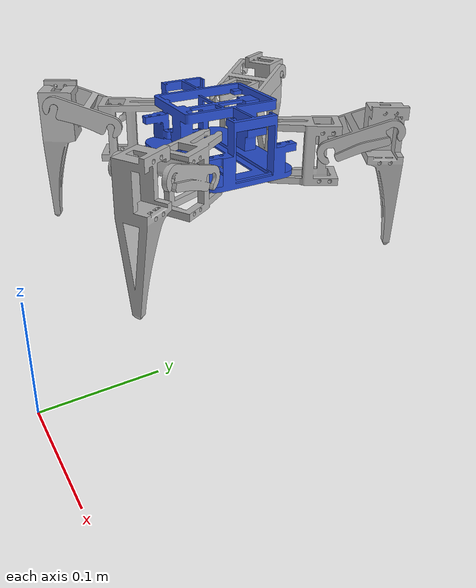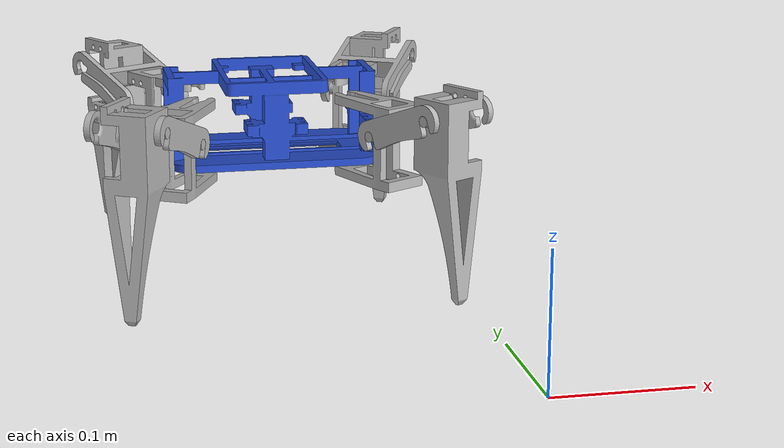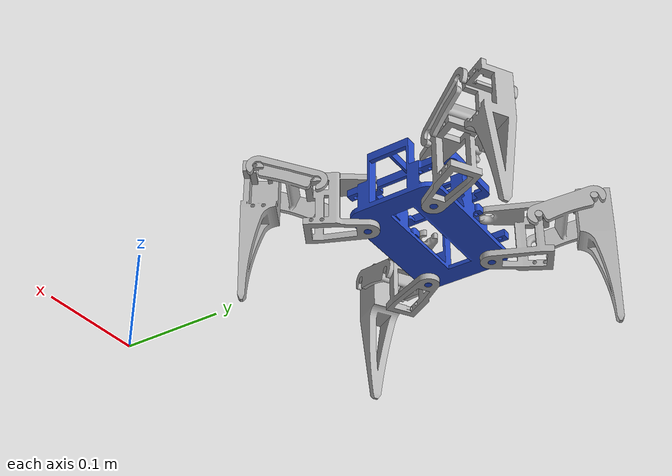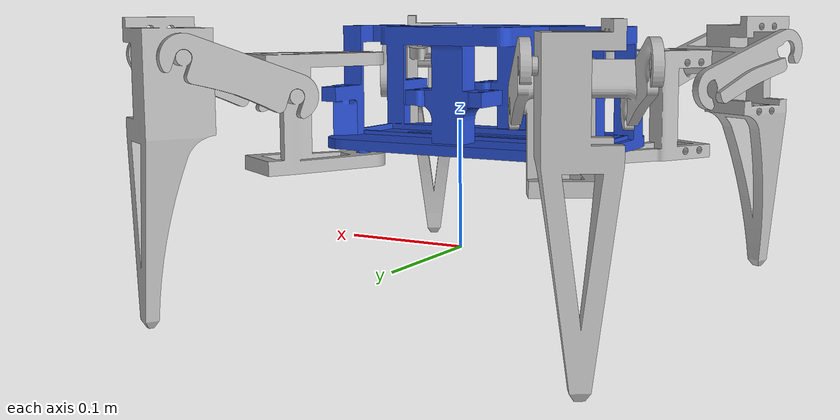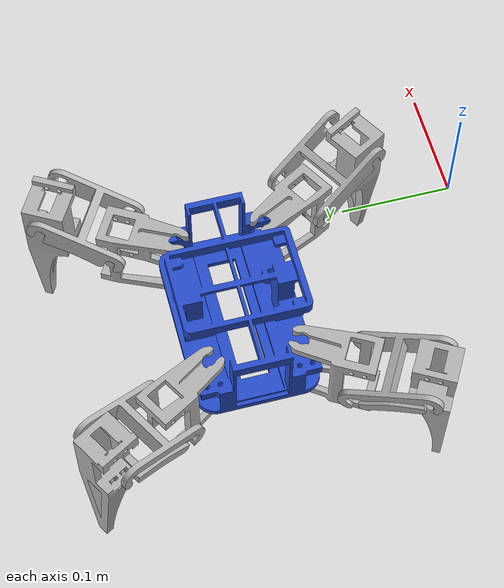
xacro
<?xml version="1.0" ?>
<robot name="FNL" xmlns:xacro="http://www.ros.org/wiki/xacro">

<xacro:include filename="$(find FNL_description)/urdf/materials.xacro" />
<xacro:include filename="$(find FNL_description)/urdf/FNL.trans" />
<xacro:include filename="$(find FNL_description)/urdf/FNL.gazebo" />
<link name="base_link">
  <inertial>
    <origin xyz="-0.1457705043934358 0.23407871850318224 0.1327563273134616" rpy="0 0 0"/>
    <mass value="1.04154618042607"/>
    <inertia ixx="0.001545" iyy="0.002498" izz="0.003072" ixy="0.0" iyz="5e-06" ixz="-0.0"/>
  </inertial>
  <visual>
    <origin xyz="0 0 0" rpy="0 0 0"/>
    <geometry>
      <mesh filename="file://$(find FNL_description)/meshes/base_link.stl" scale="0.001 0.001 0.001"/>
    </geometry>
    <material name="biru"/>
  </visual>
  <collision>
    <origin xyz="0 0 0" rpy="0 0 0"/>
    <geometry>
      <mesh filename="file://$(find FNL_description)/meshes/base_link.stl" scale="0.001 0.001 0.001"/>
    </geometry>
  </collision>
</link>

<link name="BetKananDep__2__Mirror___2__Mirror__1">
  <inertial>
    <origin xyz="0.019662332810923874 -0.007068182880435092 -0.03574463042369655" rpy="0 0 0"/>
    <mass value="0.32297068673829615"/>
    <inertia ixx="0.000414" iyy="0.000416" izz="6.2e-05" ixy="-5e-06" iyz="3.2e-05" ixz="4.2e-05"/>
  </inertial>
  <visual>
    <origin xyz="0.061011 -0.36949 -0.162069" rpy="0 0 0"/>
    <geometry>
      <mesh filename="file://$(find FNL_description)/meshes/BetKananDep__2__Mirror___2__Mirror__1.stl" scale="0.001 0.001 0.001"/>
    </geometry>
    <material name="silver"/>
  </visual>
  <collision>
    <origin xyz="0.061011 -0.36949 -0.162069" rpy="0 0 0"/>
    <geometry>
      <mesh filename="file://$(find FNL_description)/meshes/BetKananDep__2__Mirror___2__Mirror__1.stl" scale="0.001 0.001 0.001"/>
    </geometry>
  </collision>
</link>

<link name="DengKananDep__1___2__Mirror___3__Mirror__1">
  <inertial>
    <origin xyz="0.03578955401550969 0.00998806492381421 0.011762536830899034" rpy="0 0 0"/>
    <mass value="0.12464330596100792"/>
    <inertia ixx="5.2e-05" iyy="6.5e-05" izz="0.000101" ixy="1.1e-05" iyz="-1.1e-05" ixz="-6e-06"/>
  </inertial>
  <visual>
    <origin xyz="0.088496 -0.321883 -0.14206" rpy="0 0 0"/>
    <geometry>
      <mesh filename="file://$(find FNL_description)/meshes/DengKananDep__1___2__Mirror___3__Mirror__1.stl" scale="0.001 0.001 0.001"/>
    </geometry>
    <material name="silver"/>
  </visual>
  <collision>
    <origin xyz="0.088496 -0.321883 -0.14206" rpy="0 0 0"/>
    <geometry>
      <mesh filename="file://$(find FNL_description)/meshes/DengKananDep__1___2__Mirror___3__Mirror__1.stl" scale="0.001 0.001 0.001"/>
    </geometry>
  </collision>
</link>

<link name="BetKananDep__2__Mirror___2__1">
  <inertial>
    <origin xyz="-0.019661740601800537 -0.007068182880435425 -0.03574463042369655" rpy="0 0 0"/>
    <mass value="0.32297068673829604"/>
    <inertia ixx="0.000414" iyy="0.000416" izz="6.2e-05" ixy="5e-06" iyz="3.2e-05" ixz="-4.2e-05"/>
  </inertial>
  <visual>
    <origin xyz="0.230512 -0.36949 -0.162069" rpy="0 0 0"/>
    <geometry>
      <mesh filename="file://$(find FNL_description)/meshes/BetKananDep__2__Mirror___2__1.stl" scale="0.001 0.001 0.001"/>
    </geometry>
    <material name="silver"/>
  </visual>
  <collision>
    <origin xyz="0.230512 -0.36949 -0.162069" rpy="0 0 0"/>
    <geometry>
      <mesh filename="file://$(find FNL_description)/meshes/BetKananDep__2__Mirror___2__1.stl" scale="0.001 0.001 0.001"/>
    </geometry>
  </collision>
</link>

<link name="DengKananDep__1___2__Mirror___3__1">
  <inertial>
    <origin xyz="-0.0357901578439572 0.009988002317730449 0.011762576621350829" rpy="0 0 0"/>
    <mass value="0.12464356794067415"/>
    <inertia ixx="5.2e-05" iyy="6.5e-05" izz="0.000101" ixy="-1.1e-05" iyz="-1.1e-05" ixz="6e-06"/>
  </inertial>
  <visual>
    <origin xyz="0.203026 -0.321883 -0.14206" rpy="0 0 0"/>
    <geometry>
      <mesh filename="file://$(find FNL_description)/meshes/DengKananDep__1___2__Mirror___3__1.stl" scale="0.001 0.001 0.001"/>
    </geometry>
    <material name="silver"/>
  </visual>
  <collision>
    <origin xyz="0.203026 -0.321883 -0.14206" rpy="0 0 0"/>
    <geometry>
      <mesh filename="file://$(find FNL_description)/meshes/DengKananDep__1___2__Mirror___3__1.stl" scale="0.001 0.001 0.001"/>
    </geometry>
  </collision>
</link>

<link name="BetKananDep__2__1">
  <inertial>
    <origin xyz="-0.01966141439180069 0.007068122720855746 -0.03574463042369666" rpy="0 0 0"/>
    <mass value="0.32297068673829615"/>
    <inertia ixx="0.000414" iyy="0.000416" izz="6.2e-05" ixy="-5e-06" iyz="-3.2e-05" ixz="-4.2e-05"/>
  </inertial>
  <visual>
    <origin xyz="0.230533 -0.099063 -0.162069" rpy="0 0 0"/>
    <geometry>
      <mesh filename="file://$(find FNL_description)/meshes/BetKananDep__2__1.stl" scale="0.001 0.001 0.001"/>
    </geometry>
    <material name="silver"/>
  </visual>
  <collision>
    <origin xyz="0.230533 -0.099063 -0.162069" rpy="0 0 0"/>
    <geometry>
      <mesh filename="file://$(find FNL_description)/meshes/BetKananDep__2__1.stl" scale="0.001 0.001 0.001"/>
    </geometry>
  </collision>
</link>

<link name="DengKananDep__1___2__1">
  <inertial>
    <origin xyz="-0.0357896355963864 -0.009988125083393917 0.01176253683089895" rpy="0 0 0"/>
    <mass value="0.12464330596100792"/>
    <inertia ixx="5.2e-05" iyy="6.5e-05" izz="0.000101" ixy="1.1e-05" iyz="1.1e-05" ixz="6e-06"/>
  </inertial>
  <visual>
    <origin xyz="0.203047 -0.14667 -0.14206" rpy="0 0 0"/>
    <geometry>
      <mesh filename="file://$(find FNL_description)/meshes/DengKananDep__1___2__1.stl" scale="0.001 0.001 0.001"/>
    </geometry>
    <material name="silver"/>
  </visual>
  <collision>
    <origin xyz="0.203047 -0.14667 -0.14206" rpy="0 0 0"/>
    <geometry>
      <mesh filename="file://$(find FNL_description)/meshes/DengKananDep__1___2__1.stl" scale="0.001 0.001 0.001"/>
    </geometry>
  </collision>
</link>

<link name="BetKananDep__2__Mirror___3__1">
  <inertial>
    <origin xyz="0.019662332810923944 0.007068122720855802 -0.03574463042369655" rpy="0 0 0"/>
    <mass value="0.32297068673829604"/>
    <inertia ixx="0.000414" iyy="0.000416" izz="6.2e-05" ixy="5e-06" iyz="-3.2e-05" ixz="4.2e-05"/>
  </inertial>
  <visual>
    <origin xyz="0.061011 -0.099063 -0.162069" rpy="0 0 0"/>
    <geometry>
      <mesh filename="file://$(find FNL_description)/meshes/BetKananDep__2__Mirror___3__1.stl" scale="0.001 0.001 0.001"/>
    </geometry>
    <material name="silver"/>
  </visual>
  <collision>
    <origin xyz="0.061011 -0.099063 -0.162069" rpy="0 0 0"/>
    <geometry>
      <mesh filename="file://$(find FNL_description)/meshes/BetKananDep__2__Mirror___3__1.stl" scale="0.001 0.001 0.001"/>
    </geometry>
  </collision>
</link>

<link name="DengKananDep__1___2__Mirror___4__1">
  <inertial>
    <origin xyz="0.03578975005308061 -0.009988062477309934 0.011762576621350856" rpy="0 0 0"/>
    <mass value="0.12464356794067415"/>
    <inertia ixx="5.2e-05" iyy="6.5e-05" izz="0.000101" ixy="-1.1e-05" iyz="1.1e-05" ixz="-6e-06"/>
  </inertial>
  <visual>
    <origin xyz="0.088496 -0.14667 -0.14206" rpy="0 0 0"/>
    <geometry>
      <mesh filename="file://$(find FNL_description)/meshes/DengKananDep__1___2__Mirror___4__1.stl" scale="0.001 0.001 0.001"/>
    </geometry>
    <material name="silver"/>
  </visual>
  <collision>
    <origin xyz="0.088496 -0.14667 -0.14206" rpy="0 0 0"/>
    <geometry>
      <mesh filename="file://$(find FNL_description)/meshes/DengKananDep__1___2__Mirror___4__1.stl" scale="0.001 0.001 0.001"/>
    </geometry>
  </collision>
</link>

<link name="PahaKananDep__2___1___2__Mirror___3__1">
  <inertial>
    <origin xyz="0.015711880882158746 -0.025947437205217416 0.03183619171533866" rpy="0 0 0"/>
    <mass value="0.17119708420148605"/>
    <inertia ixx="0.000147" iyy="0.00012" izz="8.1e-05" ixy="1.6e-05" iyz="5e-06" ixz="-3e-06"/>
  </inertial>
  <visual>
    <origin xyz="0.091514 -0.19867 -0.10316" rpy="0 0 0"/>
    <geometry>
      <mesh filename="file://$(find FNL_description)/meshes/PahaKananDep__2___1___2__Mirror___3__1.stl" scale="0.001 0.001 0.001"/>
    </geometry>
    <material name="silver"/>
  </visual>
  <collision>
    <origin xyz="0.091514 -0.19867 -0.10316" rpy="0 0 0"/>
    <geometry>
      <mesh filename="file://$(find FNL_description)/meshes/PahaKananDep__2___1___2__Mirror___3__1.stl" scale="0.001 0.001 0.001"/>
    </geometry>
  </collision>
</link>

<link name="PahaKananDep__2___1___2__1">
  <inertial>
    <origin xyz="-0.015711948638386874 -0.025947440718973674 0.03183619079245026" rpy="0 0 0"/>
    <mass value="0.1711970761285021"/>
    <inertia ixx="0.000147" iyy="0.00012" izz="8.1e-05" ixy="-1.6e-05" iyz="5e-06" ixz="3e-06"/>
  </inertial>
  <visual>
    <origin xyz="0.200029 -0.19867 -0.10316" rpy="0 0 0"/>
    <geometry>
      <mesh filename="file://$(find FNL_description)/meshes/PahaKananDep__2___1___2__1.stl" scale="0.001 0.001 0.001"/>
    </geometry>
    <material name="silver"/>
  </visual>
  <collision>
    <origin xyz="0.200029 -0.19867 -0.10316" rpy="0 0 0"/>
    <geometry>
      <mesh filename="file://$(find FNL_description)/meshes/PahaKananDep__2___1___2__1.stl" scale="0.001 0.001 0.001"/>
    </geometry>
  </collision>
</link>

<link name="PahaKananDep__2___1___2__Mirror___2__Mirror__1">
  <inertial>
    <origin xyz="0.015711867057510154 0.025948380559393913 0.031836190792450314" rpy="0 0 0"/>
    <mass value="0.1711970761285021"/>
    <inertia ixx="0.000147" iyy="0.00012" izz="8.1e-05" ixy="-1.6e-05" iyz="-5e-06" ixz="-3e-06"/>
  </inertial>
  <visual>
    <origin xyz="0.091514 -0.269882 -0.10316" rpy="0 0 0"/>
    <geometry>
      <mesh filename="file://$(find FNL_description)/meshes/PahaKananDep__2___1___2__Mirror___2__Mirror__1.stl" scale="0.001 0.001 0.001"/>
    </geometry>
    <material name="silver"/>
  </visual>
  <collision>
    <origin xyz="0.091514 -0.269882 -0.10316" rpy="0 0 0"/>
    <geometry>
      <mesh filename="file://$(find FNL_description)/meshes/PahaKananDep__2___1___2__Mirror___2__Mirror__1.stl" scale="0.001 0.001 0.001"/>
    </geometry>
  </collision>
</link>

<link name="PahaKananDep__2___1___2__Mirror___2__1">
  <inertial>
    <origin xyz="-0.015712288673035424 0.025948377045637794 0.03183619171533866" rpy="0 0 0"/>
    <mass value="0.17119708420148605"/>
    <inertia ixx="0.000147" iyy="0.00012" izz="8.1e-05" ixy="1.6e-05" iyz="-5e-06" ixz="3e-06"/>
  </inertial>
  <visual>
    <origin xyz="0.200008 -0.269882 -0.10316" rpy="0 0 0"/>
    <geometry>
      <mesh filename="file://$(find FNL_description)/meshes/PahaKananDep__2___1___2__Mirror___2__1.stl" scale="0.001 0.001 0.001"/>
    </geometry>
    <material name="silver"/>
  </visual>
  <collision>
    <origin xyz="0.200008 -0.269882 -0.10316" rpy="0 0 0"/>
    <geometry>
      <mesh filename="file://$(find FNL_description)/meshes/PahaKananDep__2___1___2__Mirror___2__1.stl" scale="0.001 0.001 0.001"/>
    </geometry>
  </collision>
</link>

<joint name="Revolute 1" type="revolute">
  <origin xyz="0.027485 0.047607 0.020009" rpy="0 0 0"/>
  <parent link="DengKananDep__1___2__Mirror___3__Mirror__1"/>
  <child link="BetKananDep__2__Mirror___2__Mirror__1"/>
  <axis xyz="0.866025 -0.5 -0.0"/>
  <limit upper="3.926991" lower="-0.436332" effort="100" velocity="100"/>
</joint>

<joint name="Revolute 2" type="revolute">
  <origin xyz="0.003018 0.052001 0.0389" rpy="0 0 0"/>
  <parent link="PahaKananDep__2___1___2__Mirror___2__Mirror__1"/>
  <child link="DengKananDep__1___2__Mirror___3__Mirror__1"/>
  <axis xyz="0.866025 -0.5 -0.0"/>
  <limit upper="1.48353" lower="-1.396263" effort="100" velocity="100"/>
</joint>

<joint name="Revolute 3" type="revolute">
  <origin xyz="-0.027486 0.047607 0.020009" rpy="0 0 0"/>
  <parent link="DengKananDep__1___2__Mirror___3__1"/>
  <child link="BetKananDep__2__Mirror___2__1"/>
  <axis xyz="0.866025 0.5 0.0"/>
  <limit upper="3.926991" lower="-0.436332" effort="100" velocity="100"/>
</joint>

<joint name="Revolute 4" type="revolute">
  <origin xyz="-0.003018 0.052001 0.0389" rpy="0 0 0"/>
  <parent link="PahaKananDep__2___1___2__Mirror___2__1"/>
  <child link="DengKananDep__1___2__Mirror___3__1"/>
  <axis xyz="0.866025 0.5 -0.0"/>
  <limit upper="1.48353" lower="-1.396263" effort="100" velocity="100"/>
</joint>

<joint name="Revolute 5" type="revolute">
  <origin xyz="-0.027486 -0.047607 0.020009" rpy="0 0 0"/>
  <parent link="DengKananDep__1___2__1"/>
  <child link="BetKananDep__2__1"/>
  <axis xyz="-0.866025 0.5 0.0"/>
  <limit upper="3.926991" lower="-0.436332" effort="100" velocity="100"/>
</joint>

<joint name="Revolute 6" type="revolute">
  <origin xyz="-0.003018 -0.052 0.0389" rpy="0 0 0"/>
  <parent link="PahaKananDep__2___1___2__1"/>
  <child link="DengKananDep__1___2__1"/>
  <axis xyz="0.866025 -0.5 -0.0"/>
  <limit upper="1.396263" lower="-1.48353" effort="100" velocity="100"/>
</joint>

<joint name="Revolute 7" type="revolute">
  <origin xyz="0.027485 -0.047607 0.020009" rpy="0 0 0"/>
  <parent link="DengKananDep__1___2__Mirror___4__1"/>
  <child link="BetKananDep__2__Mirror___3__1"/>
  <axis xyz="-0.866025 -0.5 -0.0"/>
  <limit upper="3.926991" lower="-0.436332" effort="100" velocity="100"/>
</joint>

<joint name="Revolute 8" type="revolute">
  <origin xyz="0.003018 -0.052 0.0389" rpy="0 0 0"/>
  <parent link="PahaKananDep__2___1___2__Mirror___3__1"/>
  <child link="DengKananDep__1___2__Mirror___4__1"/>
  <axis xyz="-0.866025 -0.5 -0.0"/>
  <limit upper="1.48353" lower="-1.396263" effort="100" velocity="100"/>
</joint>

<joint name="Revolute 9" type="revolute">
  <origin xyz="-0.091514 0.19867 0.10316" rpy="0 0 0"/>
  <parent link="base_link"/>
  <child link="PahaKananDep__2___1___2__Mirror___3__1"/>
  <axis xyz="0.0 0.0 -1.0"/>
  <limit upper="1.134464" lower="-0.959931" effort="100" velocity="100"/>
</joint>

<joint name="Revolute 11" type="revolute">
  <origin xyz="-0.200029 0.19867 0.10316" rpy="0 0 0"/>
  <parent link="base_link"/>
  <child link="PahaKananDep__2___1___2__1"/>
  <axis xyz="0.0 0.0 -1.0"/>
  <limit upper="0.959931" lower="-1.134464" effort="100" velocity="100"/>
</joint>

<joint name="Revolute 12" type="revolute">
  <origin xyz="-0.091514 0.269882 0.10316" rpy="0 0 0"/>
  <parent link="base_link"/>
  <child link="PahaKananDep__2___1___2__Mirror___2__Mirror__1"/>
  <axis xyz="0.0 0.0 -1.0"/>
  <limit upper="0.959931" lower="-1.134464" effort="100" velocity="100"/>
</joint>

<joint name="Revolute 13" type="revolute">
  <origin xyz="-0.200008 0.269882 0.10316" rpy="0 0 0"/>
  <parent link="base_link"/>
  <child link="PahaKananDep__2___1___2__Mirror___2__1"/>
  <axis xyz="0.0 0.0 -1.0"/>
  <limit upper="1.134464" lower="-0.959931" effort="100" velocity="100"/>
</joint>

</robot>

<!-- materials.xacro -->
<robot name="FNL" xmlns:xacro="http://www.ros.org/wiki/xacro" >

<material name="silver">
  <color rgba="0.700 0.700 0.700 1.000"/>
</material>

<material name="blue">
  <color rgba = "0.2 0.2 1 1" />
</material>

</robot>

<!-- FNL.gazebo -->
<robot name="FNL" xmlns:xacro="http://www.ros.org/wiki/xacro" >

<xacro:property name="body_color" value="Gazebo/Silver" />
<xacro:property name="blue" value="Gazebo/Blue" />

<gazebo>
  <plugin name="control" filename="libgazebo_ros_control.so"/>
</gazebo>
<gazebo reference="base_link">
  <material>${blue}</material>
  <mu1>0.2</mu1>
  <mu2>0.2</mu2>
  <self_collide>true</self_collide>
  <gravity>true</gravity>
</gazebo>

<gazebo reference="BetKananDep__2__Mirror___2__Mirror__1">
  <material>${body_color}</material>
  <mu1>0.2</mu1>
  <mu2>0.2</mu2>
  <self_collide>true</self_collide>
</gazebo>

<gazebo reference="DengKananDep__1___2__Mirror___3__Mirror__1">
  <material>${body_color}</material>
  <mu1>0.2</mu1>
  <mu2>0.2</mu2>
  <self_collide>true</self_collide>
</gazebo>

<gazebo reference="BetKananDep__2__Mirror___2__1">
  <material>${body_color}</material>
  <mu1>0.2</mu1>
  <mu2>0.2</mu2>
  <self_collide>true</self_collide>
</gazebo>

<gazebo reference="DengKananDep__1___2__Mirror___3__1">
  <material>${body_color}</material>
  <mu1>0.2</mu1>
  <mu2>0.2</mu2>
  <self_collide>true</self_collide>
</gazebo>

<gazebo reference="BetKananDep__2__1">
  <material>${body_color}</material>
  <mu1>0.2</mu1>
  <mu2>0.2</mu2>
  <self_collide>true</self_collide>
</gazebo>

<gazebo reference="DengKananDep__1___2__1">
  <material>${body_color}</material>
  <mu1>0.2</mu1>
  <mu2>0.2</mu2>
  <self_collide>true</self_collide>
</gazebo>

<gazebo reference="BetKananDep__2__Mirror___3__1">
  <material>${body_color}</material>
  <mu1>0.2</mu1>
  <mu2>0.2</mu2>
  <self_collide>true</self_collide>
</gazebo>

<gazebo reference="DengKananDep__1___2__Mirror___4__1">
  <material>${body_color}</material>
  <mu1>0.2</mu1>
  <mu2>0.2</mu2>
  <self_collide>true</self_collide>
</gazebo>

<gazebo reference="PahaKananDep__2___1___2__Mirror___3__1">
  <material>${body_color}</material>
  <mu1>0.2</mu1>
  <mu2>0.2</mu2>
  <self_collide>true</self_collide>
</gazebo>

<gazebo reference="PahaKananDep__2___1___2__1">
  <material>${body_color}</material>
  <mu1>0.2</mu1>
  <mu2>0.2</mu2>
  <self_collide>true</self_collide>
</gazebo>

<gazebo reference="PahaKananDep__2___1___2__Mirror___2__Mirror__1">
  <material>${body_color}</material>
  <mu1>0.2</mu1>
  <mu2>0.2</mu2>
  <self_collide>true</self_collide>
</gazebo>

<gazebo reference="PahaKananDep__2___1___2__Mirror___2__1">
  <material>${body_color}</material>
  <mu1>0.2</mu1>
  <mu2>0.2</mu2>
  <self_collide>true</self_collide>
</gazebo>

</robot>
